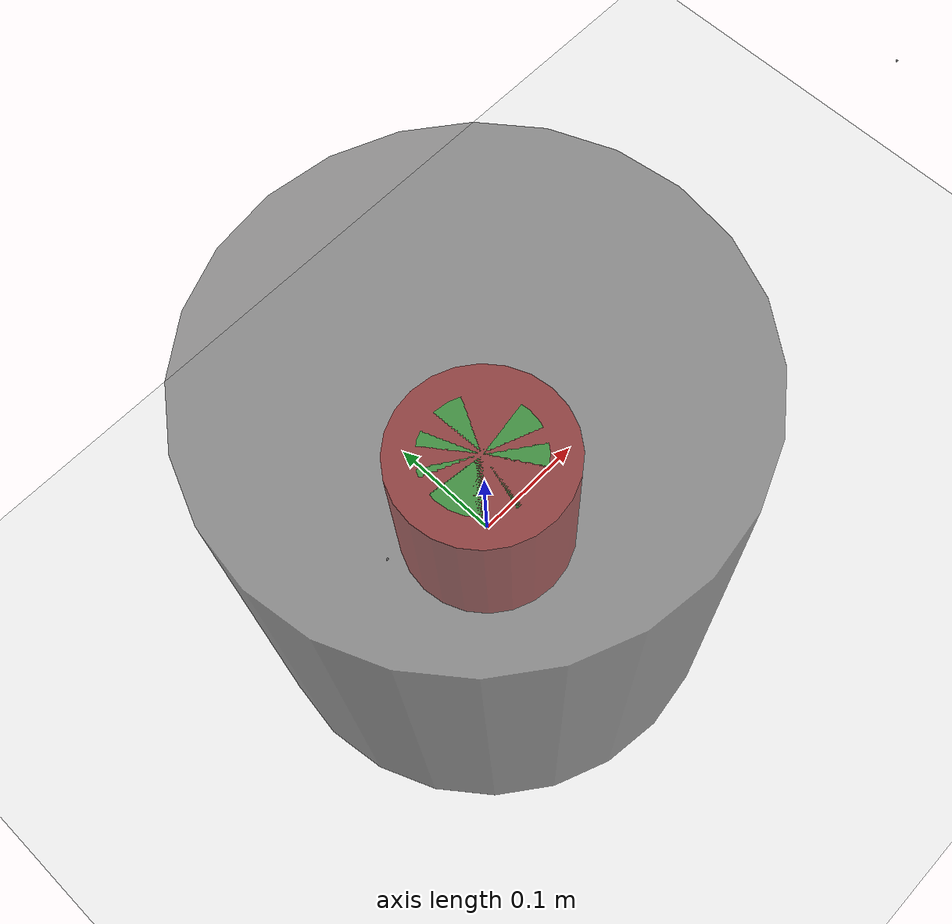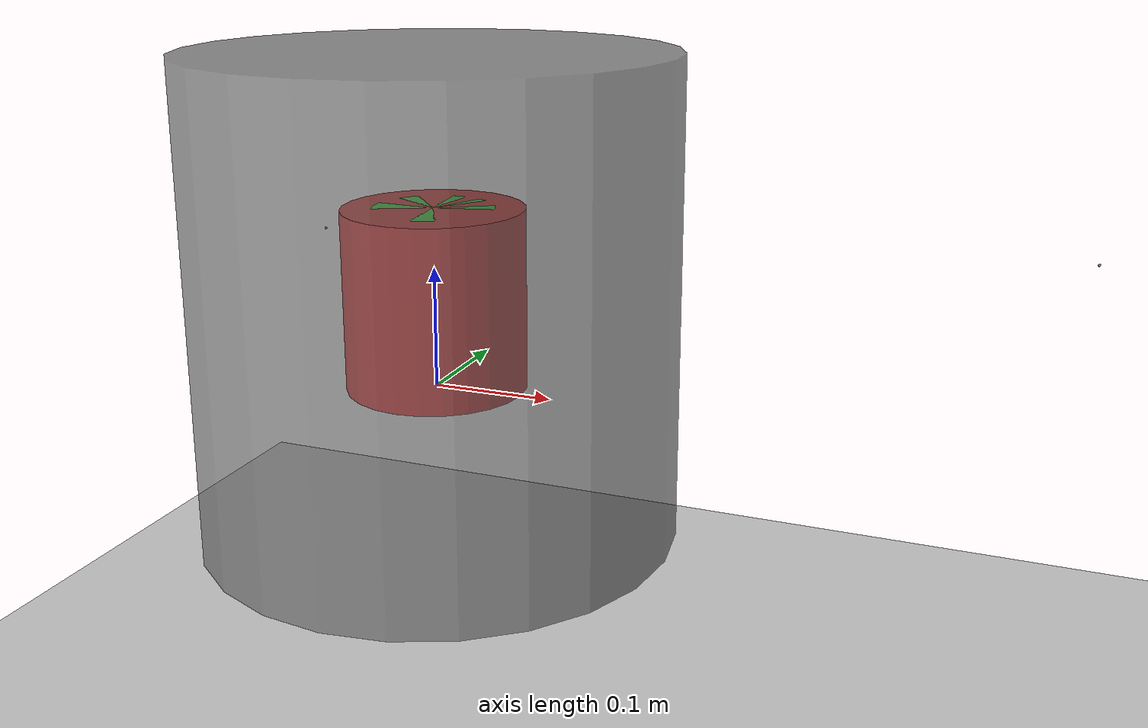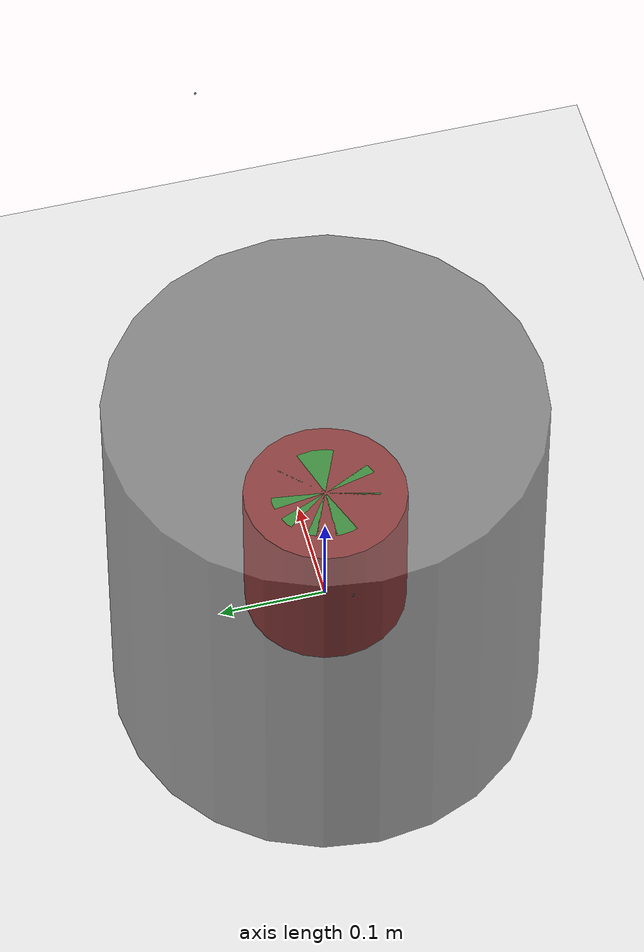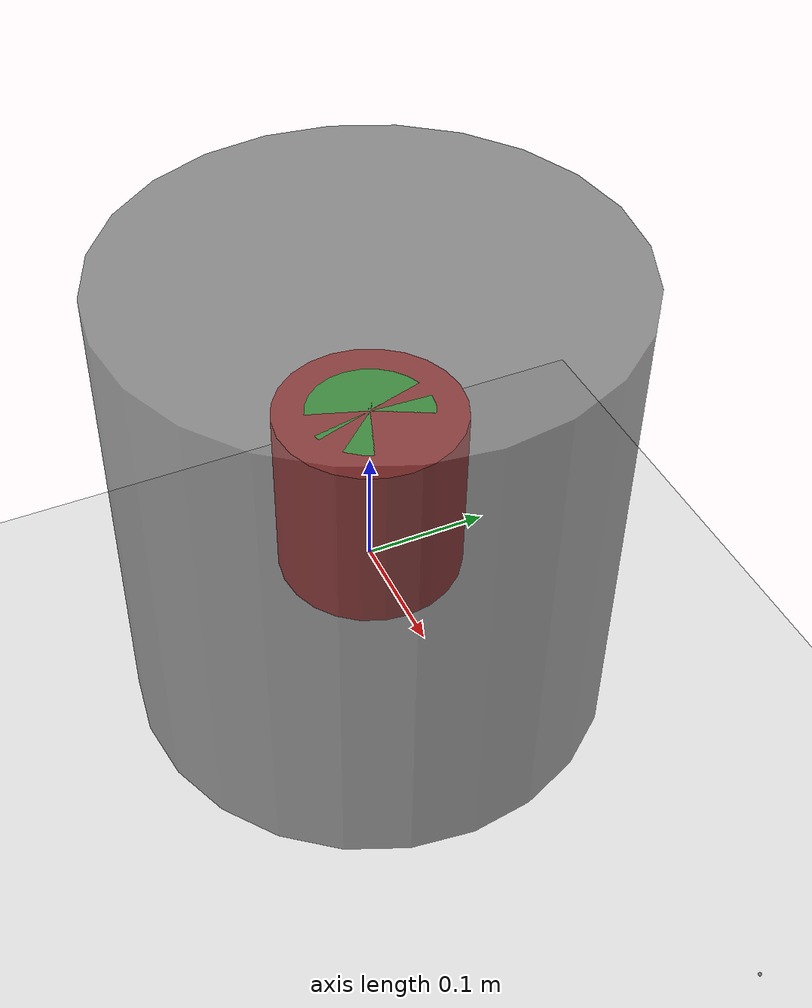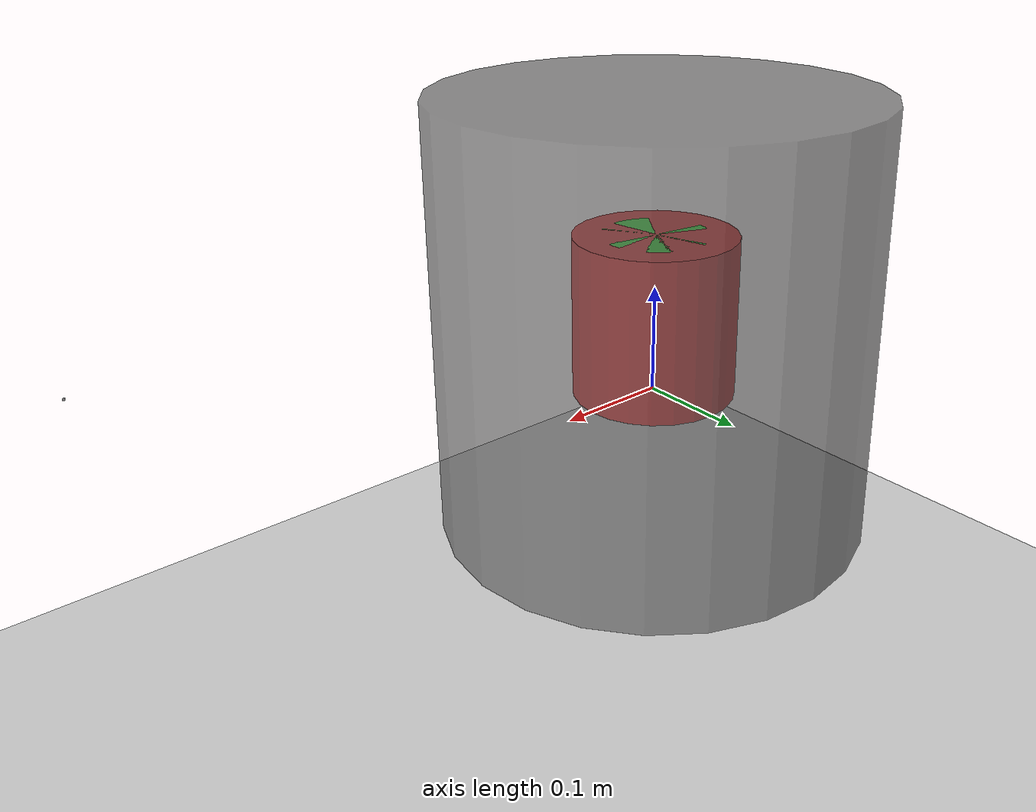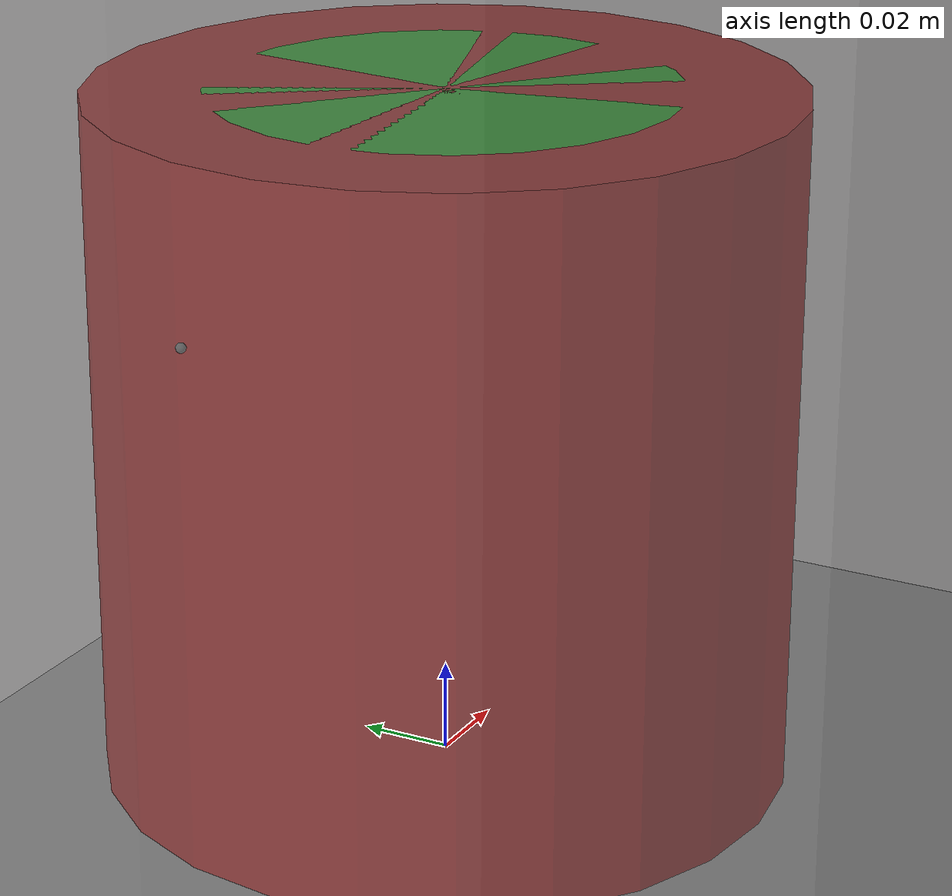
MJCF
<mujoco>
    <option gravity="0 0 0" timestep="0.02"/>
<default>
    <geom rgba="0 0 0 1"/>
</default>
    <worldbody>
    <light diffuse=".2 .2 .2" pos="0 0 20" dir="0 0 -1" mode="track"/>
    <body>
      <geom name='floor' pos='0 0 -0.4' size='10 10 .1' mass="10000" type='box' condim='3' rgba=".9 .9 .9 1" />
    <camera name="center" mode="fixed" pos="0 0 5" />
     <camera name="30" mode="fixed" pos="0 -5 10"  axisangle="1 0 0 30"    />
    </body>

    <body name="predator0" pos="0 0 0.075">
            <joint axis="1 0 0" damping="2.5" frictionloss="0" name="predator00" pos="0 0 0" type="slide"/>
            <joint axis="0 1 0" damping="2.5" frictionloss="0" name="predator01" pos="0 0 0" type="slide"/>
            <geom type="cylinder" size="0.075 0.075" mass="1" conaffinity="1" solimp="0.9 0.9999 0.001 0.5 1" solref="0.5 0.2" rgba="1 0 0 1"/>
            <site name="predator0" pos="-0.1 0 0.05" type="sphere" size="0.001"/>
    </body>

    <body name="predator1" pos="0 0 0.075">
            <joint axis="1 0 0" damping="2.5" frictionloss="0" name="predator10" pos="0 0 0" type="slide"/>
            <joint axis="0 1 0" damping="2.5" frictionloss="0" name="predator11" pos="0 0 0" type="slide"/>
            <geom type="cylinder" size="0.075 0.075" mass="1" conaffinity="1" solimp="0.9 0.9999 0.001 0.5 1" solref="0.5 0.2" rgba="1 0 0 1"/>
            <site name="predator1" pos="-0.1 0 0.05" type="sphere" size="0.001"/>
    </body>

    <body name="predator2" pos="0 0 0.075">
            <joint axis="1 0 0" damping="2.5" frictionloss="0" name="predator20" pos="0 0 0" type="slide"/>
            <joint axis="0 1 0" damping="2.5" frictionloss="0" name="predator21" pos="0 0 0" type="slide"/>
            <geom type="cylinder" size="0.075 0.075" mass="1" conaffinity="1" solimp="0.9 0.9999 0.001 0.5 1" solref="0.5 0.2" rgba="1 0 0 1"/>
            <site name="predator2" pos="-0.1 0 0.05" type="sphere" size="0.001"/>
    </body>

    <body name="predator3" pos="0 0 0.075">
            <joint axis="1 0 0" damping="2.5" frictionloss="0" name="predator30" pos="0 0 0" type="slide"/>
            <joint axis="0 1 0" damping="2.5" frictionloss="0" name="predator31" pos="0 0 0" type="slide"/>
            <geom type="cylinder" size="0.075 0.075" mass="1" conaffinity="1" solimp="0.9 0.9999 0.001 0.5 1" solref="0.5 0.2" rgba="1 0 0 1"/>
            <site name="predator3" pos="-0.1 0 0.05" type="sphere" size="0.001"/>
    </body>

    <body name="predator4" pos="0 0 0.075">
            <joint axis="1 0 0" damping="2.5" frictionloss="0" name="predator40" pos="0 0 0" type="slide"/>
            <joint axis="0 1 0" damping="2.5" frictionloss="0" name="predator41" pos="0 0 0" type="slide"/>
            <geom type="cylinder" size="0.075 0.075" mass="1" conaffinity="1" solimp="0.9 0.9999 0.001 0.5 1" solref="0.5 0.2" rgba="1 0 0 1"/>
            <site name="predator4" pos="-0.1 0 0.05" type="sphere" size="0.001"/>
    </body>

    <body name="predator5" pos="0 0 0.075">
            <joint axis="1 0 0" damping="2.5" frictionloss="0" name="predator50" pos="0 0 0" type="slide"/>
            <joint axis="0 1 0" damping="2.5" frictionloss="0" name="predator51" pos="0 0 0" type="slide"/>
            <geom type="cylinder" size="0.075 0.075" mass="1" conaffinity="1" solimp="0.9 0.9999 0.001 0.5 1" solref="0.5 0.2" rgba="1 0 0 1"/>
            <site name="predator5" pos="-0.1 0 0.05" type="sphere" size="0.001"/>
    </body>

    <body name="prey0" pos="0 0 0.075">
            <joint axis="1 0 0" damping="2.5" frictionloss="0" name="prey00" pos="0 0 0" type="slide"/>
            <joint axis="0 1 0" damping="2.5" frictionloss="0" name="prey01" pos="0 0 0" type="slide"/>
            <geom type ="cylinder" size="0.05 0.075" mass="1" conaffinity="1" solimp="0.9 0.9999 0.001 0.5 1" solref="0.5 0.2" rgba="0 1 0 1"/>
            <site name="prey0" pos="0.5 0 0.075" type="sphere" size="0.001"/>
    </body>

    <body name="block0" pos="0 0 0.075">
            <geom type="cylinder" size="0.2 0.2" mass="1" conaffinity="1" solimp="0.9 0.9999 0.001 0.5 1" solref="0.5 0.2" rgba="0.4 0.4 0.4 0.7" condim='3'/>

    </body>
    <body name="block1" pos="0 0 0.075">
        <geom type="cylinder" size="0.2 0.2" mass="1" conaffinity="1" solimp="0.9 0.9999 0.001 0.5 1" solref="0.5 0.2" rgba="0.4 0.4 0.4 0.7" condim='3'/>

    </body>

    </worldbody>
    <actuator>
        <motor gear="1" joint="predator00"/>
        <motor gear="1" joint="predator01"/>
        <motor gear="1" joint="predator10"/>
        <motor gear="1" joint="predator11"/>
        <motor gear="1" joint="predator20"/>
        <motor gear="1" joint="predator21"/>
        <motor gear="1" joint="predator30"/>
        <motor gear="1" joint="predator31"/>
        <motor gear="1" joint="predator40"/>
        <motor gear="1" joint="predator41"/>
        <motor gear="1" joint="predator50"/>
        <motor gear="1" joint="predator51"/>

        <motor gear="1" joint="prey00" />
        <motor gear="1" joint="prey01" />

    </actuator>
</mujoco>
